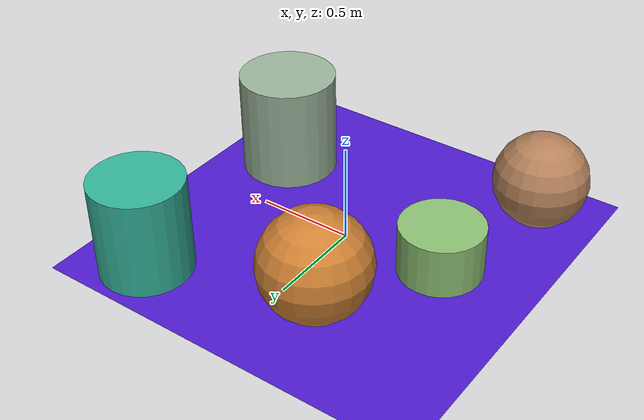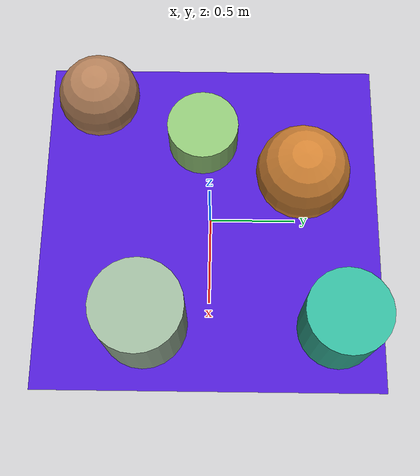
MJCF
<mujoco>
   <asset>
<texture type="skybox" builtin="gradient" rgb1="0.4 0.9 0.5" rgb2="0.8 0.1 0.7" width="256" height="256"/>
<texture name="gradient_0" builtin="gradient" rgb1="0.0 0.8 0.5" rgb2="0.4 0.6 0.7" width="200" height="200"/>
<texture name="gradient_1" builtin="gradient" rgb1="0.7 0.5 0.6" rgb2="0.5 0.9 0.6" width="200" height="200"/>
<texture name="gradient_2" builtin="gradient" rgb1="0.7 0.7 0.5" rgb2="0.7 0.3 0.2" width="200" height="200"/>
<texture name="gradient_3" builtin="gradient" rgb1="0.5 0.7 0.7" rgb2="0.6 0.8 0.2" width="200" height="200"/>
<texture name="flat_4" builtin="flat" rgb1="0.8 0.5 0.2" rgb2="0.8 0.5 0.2"  width="200" height="200"/><material name="gradient_0_mat" reflectance="0" texture="gradient_0" texuniform="true"/>
<material name="gradient_1_mat" reflectance="0" texture="gradient_1" texuniform="true"/>
<material name="gradient_2_mat" reflectance="0" texture="gradient_2" texuniform="true"/>
<material name="gradient_3_mat" reflectance="0" texture="gradient_3" texuniform="true"/>
<material name="flat_4_mat" reflectance="0" texture="flat_4" texuniform="true"/>
   </asset>

   <worldbody>
      <light diffuse=".9 .9 .9" pos="0 0 3" dir="0 0 -1"/>
     <geom type="plane" size="1 1 0.1" rgba="0.3 0.1 0.8 1"/>
<geom type="cylinder" pos="0.64 0.73 0.25" size="0.23 0.25 0.25" material="gradient_0_mat" />
<geom type="cylinder" pos="0.63 -0.37 0.27" size="0.25 0.27 0.27" material="gradient_1_mat" />
<geom type="sphere" pos="-0.7 -0.67 0.24" size="0.24 0.24 0.24" material="gradient_2_mat" />
<geom type="cylinder" pos="-0.51 -0.05 0.13" size="0.21 0.13 0.13" material="gradient_3_mat" />
<geom type="sphere" pos="-0.21 0.53 0.27" size="0.27 0.27 0.27" material="flat_4_mat" /><camera euler="60 0 180" fovy="60" name="camera_a" pos="0 -1.5 1"></camera>   </worldbody>
</mujoco>
